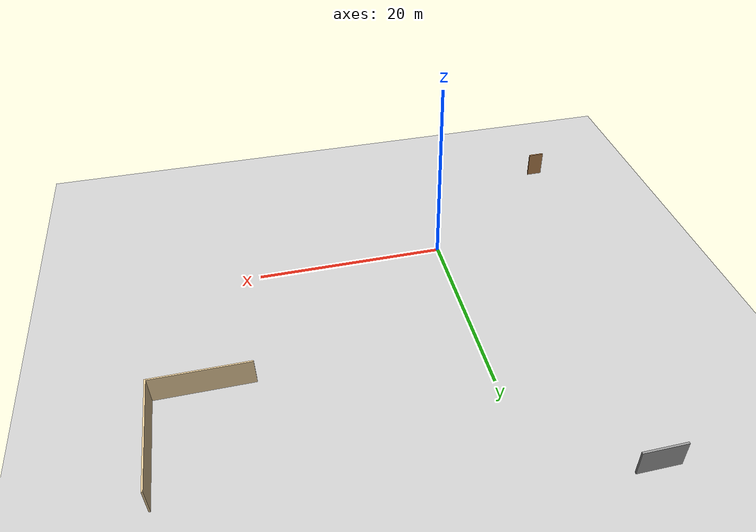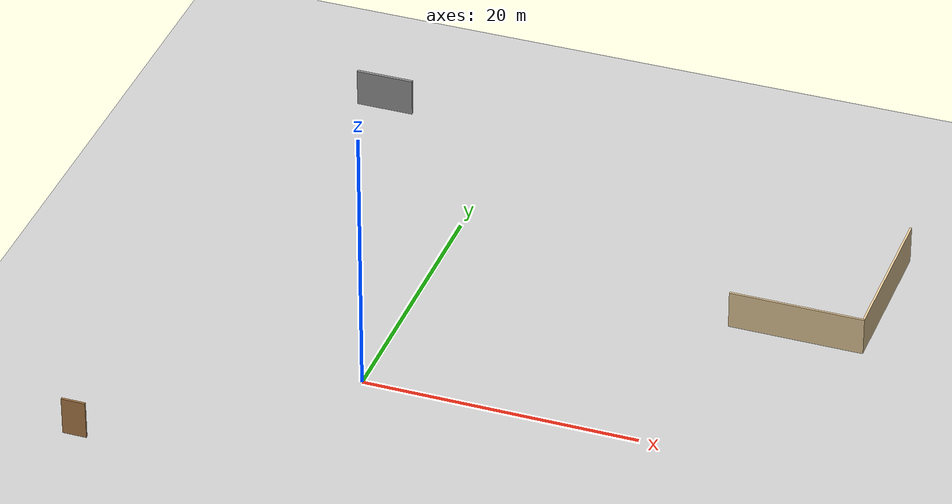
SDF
<sdf version="1.6">
 <world name="default">
  <light name="sun" type="directional">
   <pose>0 0 10 0 -0 0</pose>
   <diffuse>0.8 0.8 0.8 1</diffuse>
   <specular>0.2 0.2 0.2 1</specular>
   <attenuation>
    <range>1000</range>
    <constant>0.9</constant>
    <linear>0.01</linear>
    <quadratic>0.001</quadratic>
   </attenuation>
   <direction>-0.5 0.1 -0.9</direction>
  </light>
  <model name="ground_plane">
   <static>1</static>
   <link name="link">
    <collision name="collision">
     <geometry><plane><normal>0 0 1</normal><size>100 100</size></plane></geometry>
     <surface>
      <contact><collide_bitmask>65535</collide_bitmask></contact>
      <friction><ode><mu>100</mu><mu2>50</mu2></ode></friction>
     </surface>
    </collision>
    <visual name="visual">
     <cast_shadows>0</cast_shadows>
     <geometry><plane><normal>0 0 1</normal><size>100 100</size></plane></geometry>
     <material>
      <script><uri>file://media/materials/scripts/gazebo.material</uri><name>Gazebo/Grey</name></script>
     </material>
    </visual>
   </link>
  </model>
  <gravity>0 0 -9.8</gravity>
  <magnetic_field>6e-06 2.3e-05 -4.2e-05</magnetic_field>
  <atmosphere type="adiabatic"/>
  <physics name="default_physics" default="0" type="ode">
   <max_step_size>0.001</max_step_size>
   <real_time_factor>1</real_time_factor>
   <real_time_update_rate>1000</real_time_update_rate>
  </physics>
  <scene><ambient>0.4 0.4 0.4 1</ambient><background>0.7 0.7 0.7 1</background><shadows>1</shadows></scene>
  <spherical_coordinates>
   <surface_model>EARTH_WGS84</surface_model>
   <latitude_deg>0</latitude_deg>
   <longitude_deg>0</longitude_deg>
   <elevation>0</elevation>
   <heading_deg>0</heading_deg>
  </spherical_coordinates>
  <model name="willow_garage_encloser_0">
   <pose>7.177 10.14 0 0 -0 0</pose>
   <link name="Wall_26">
    <collision name="Wall_26_Collision">
     <geometry><box><size>1.75 0.15 2.85</size></box></geometry>
     <pose>0 0 1.425 0 -0 0</pose>
    </collision>
    <visual name="Wall_26_Visual">
     <pose>0 0 1.425 0 -0 0</pose>
     <geometry><box><size>1.75 0.15 2.85</size></box></geometry>
     <material>
      <script><uri>file://media/materials/scripts/gazebo.material</uri><name>Gazebo/Wood</name></script>
      <ambient>1 1 1 1</ambient>
     </material>
     <meta><layer>0</layer></meta>
    </visual>
    <pose>-23.443 -22.285 0 0 -0 0</pose>
   </link>
   <link name="Wall_28">
    <collision name="Wall_28_Collision">
     <geometry><box><size>4.3 0.2 2.85</size></box></geometry>
     <pose>0 0 1.425 0 -0 0</pose>
    </collision>
    <visual name="Wall_28_Visual">
     <pose>0 0 1.425 0 -0 0</pose>
     <geometry><box><size>4.3 0.2 2.85</size></box></geometry>
     <material>
      <script><uri>file://media/materials/scripts/gazebo.material</uri><name>Gazebo/Grey</name></script>
      <ambient>0.180392 0.203922 0.211765 1</ambient>
     </material>
     <meta><layer>0</layer></meta>
    </visual>
    <pose>-17.577 22.26 0 0 -0 0</pose>
   </link>
   <link name="Wall_30">
    <collision name="Wall_30_Collision">
     <geometry><box><size>9.77 0.15 2.85</size></box></geometry>
     <pose>0 0 1.425 0 -0 0</pose>
    </collision>
    <visual name="Wall_30_Visual">
     <pose>0 0 1.425 0 -0 0</pose>
     <geometry><box><size>9.77 0.15 2.85</size></box></geometry>
     <material>
      <script><uri>file://media/materials/scripts/gazebo.material</uri><name>Gazebo/Grey</name></script>
      <ambient>0.921569 0.807843 0.615686 1</ambient>
     </material>
     <meta><layer>0</layer></meta>
    </visual>
    <pose>19.433 4.575 0 0 -0 0</pose>
   </link>
   <link name="Wall_32">
    <collision name="Wall_32_Collision">
     <geometry><box><size>11.835 0.15 2.85</size></box></geometry>
     <pose>0 0 1.425 0 -0 0</pose>
    </collision>
    <visual name="Wall_32_Visual">
     <pose>0 0 1.425 0 -0 0</pose>
     <geometry><box><size>11.835 0.15 2.85</size></box></geometry>
     <material>
      <script><uri>file://media/materials/scripts/gazebo.material</uri><name>Gazebo/Grey</name></script>
      <ambient>0.921569 0.807843 0.615686 1</ambient>
     </material>
     <meta><layer>0</layer></meta>
    </visual>
    <pose>24.243 10.4175 0 0 -0 1.5708</pose>
   </link>
   <static>1</static>
  </model>
 </world>
</sdf>
